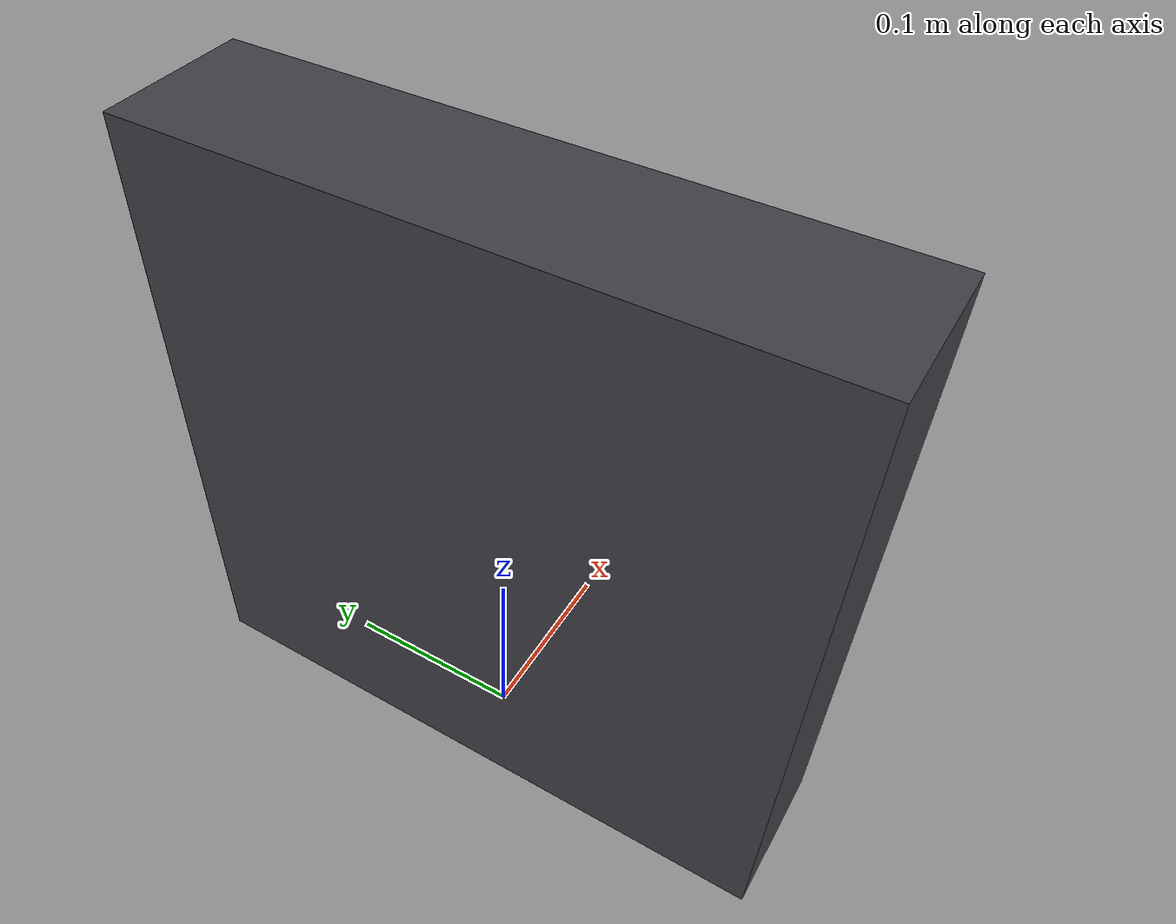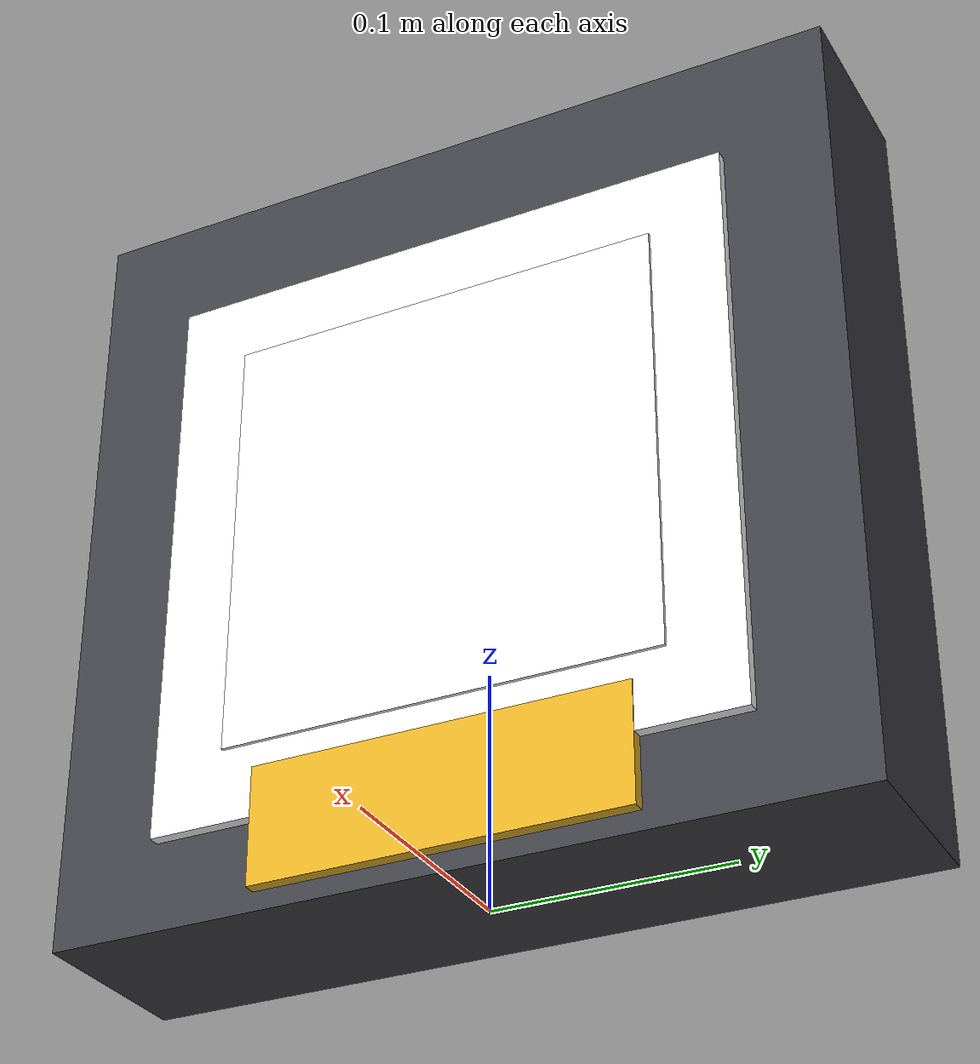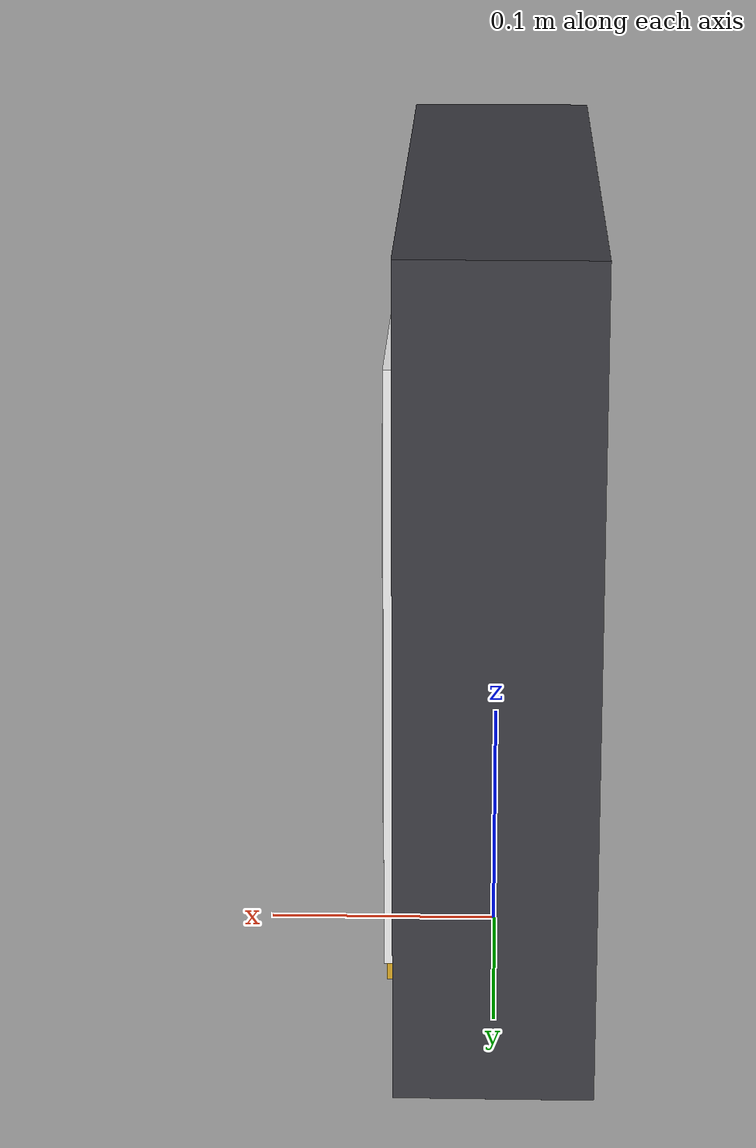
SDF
<?xml version="1.0" ?>
<sdf version="1.6">
  <model name="aruco_dock_station">
    <static>true</static>
    <link name="link">

      <!-- Dock post -->
      <visual name="dock_post_visual">
        <pose>0 0 0.17 0 0 0</pose>
        <geometry>
          <box><size>0.08 0.34 0.34</size></box>
        </geometry>
        <material>
          <ambient>0.15 0.15 0.17 1.0</ambient>
          <diffuse>0.25 0.25 0.28 1.0</diffuse>
          <specular>0.1 0.1 0.1 1.0</specular>
        </material>
      </visual>
      <collision name="dock_post_collision">
        <pose>0 0 0.17 0 0 0</pose>
        <geometry>
          <box><size>0.08 0.34 0.34</size></box>
        </geometry>
        <surface>
          <friction><ode><mu>0.8</mu><mu2>0.8</mu2></ode></friction>
        </surface>
      </collision>

      <!-- White backing board: gives the marker a clean quiet zone -->
      <visual name="marker_backing_visual">
        <pose>0.0425 0 0.162 0 0 0</pose>
        <geometry>
          <box><size>0.005 0.25 0.25</size></box>
        </geometry>
        <material>
          <ambient>0.9 0.9 0.9 1.0</ambient>
          <diffuse>1.0 1.0 1.0 1.0</diffuse>
        </material>
      </visual>

      <!-- Marker plate: 0.1875 m wide => 0.150 m of printed marker -->
      <visual name="aruco_marker_visual">
        <pose>0.0455 0 0.162 0 0 0</pose>
        <geometry>
          <box><size>0.002 0.1875 0.1875</size></box>
        </geometry>
        <material>
          <script>
            <uri>model://aruco_dock_station/materials/scripts</uri>
            <uri>model://aruco_dock_station/materials/textures</uri>
            <name>Aruco/Marker42</name>
          </script>
          <!-- Unlit-ish so the marker stays high contrast regardless of the sun angle -->
          <ambient>1 1 1 1</ambient>
          <diffuse>1 1 1 1</diffuse>
          <specular>0 0 0 1</specular>
        </material>
      </visual>

      <!-- Charging plate the robot noses up to -->
      <visual name="contact_plate_visual">
        <pose>0.0425 0 0.033 0 0 0</pose>
        <geometry>
          <box><size>0.006 0.16 0.05</size></box>
        </geometry>
        <material>
          <ambient>0.6 0.45 0.1 1.0</ambient>
          <diffuse>0.9 0.7 0.15 1.0</diffuse>
        </material>
      </visual>

    </link>
  </model>
</sdf>
